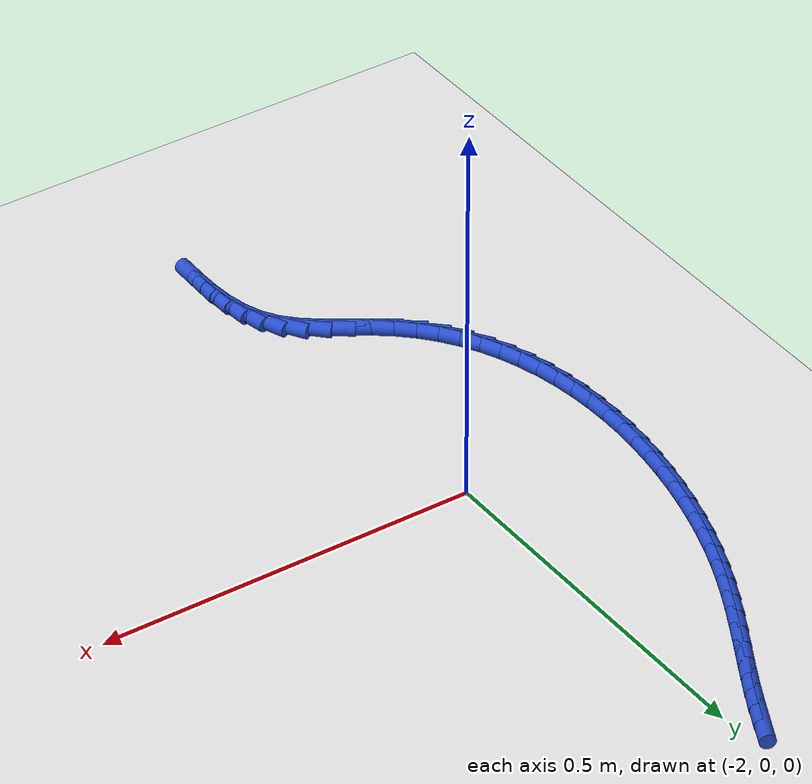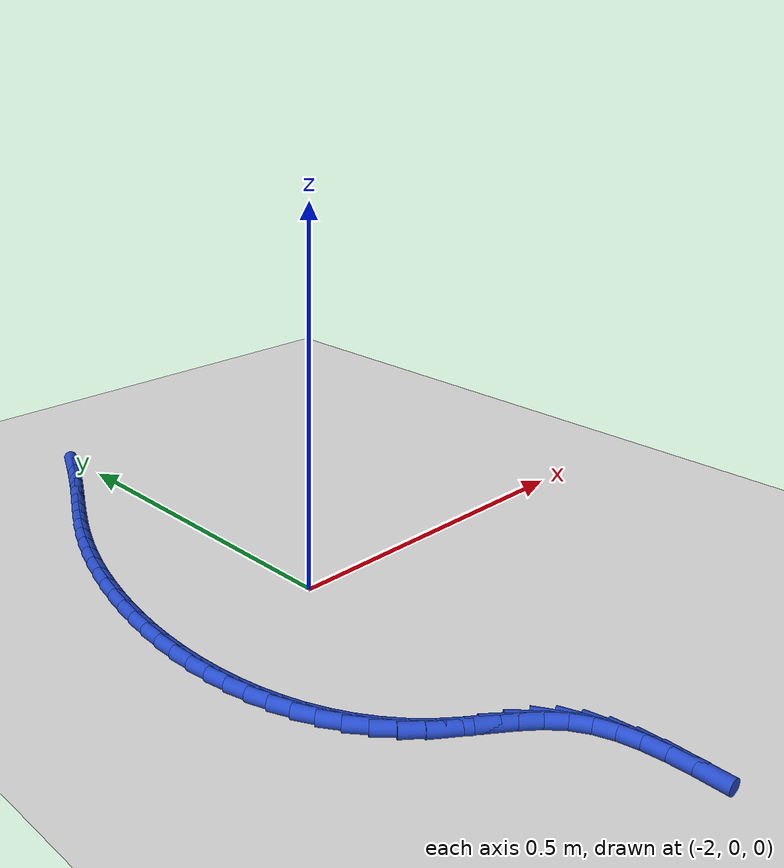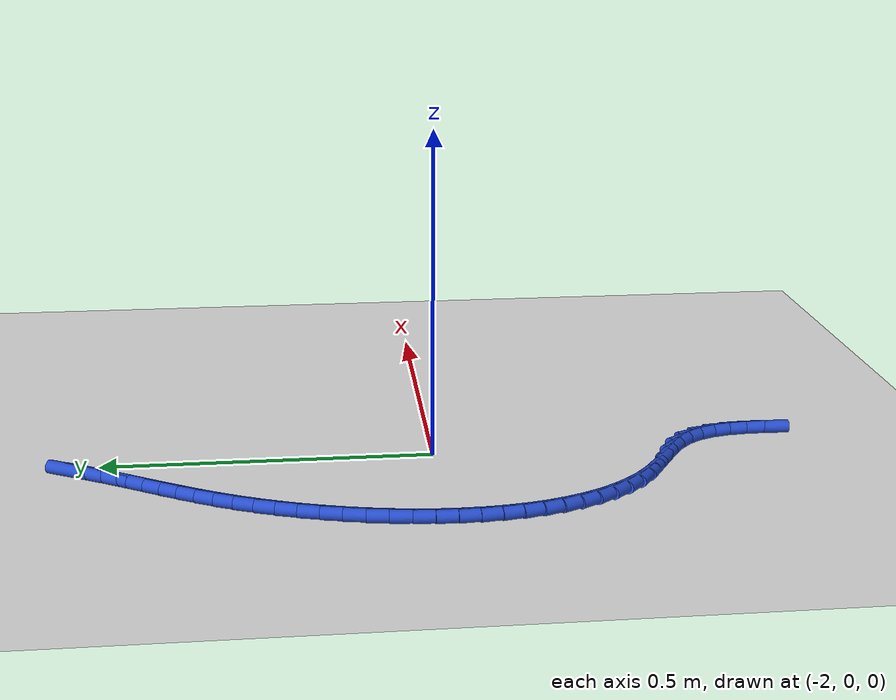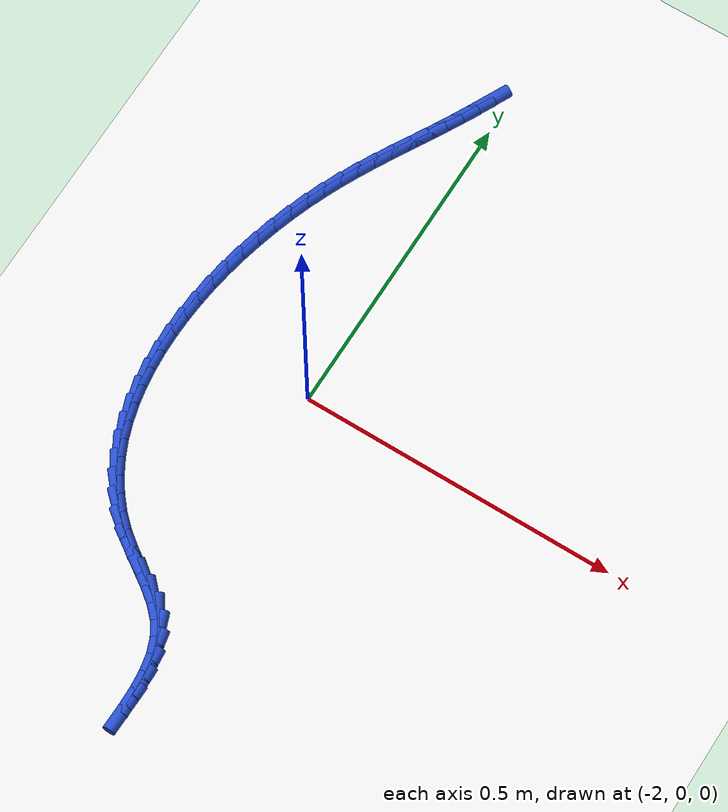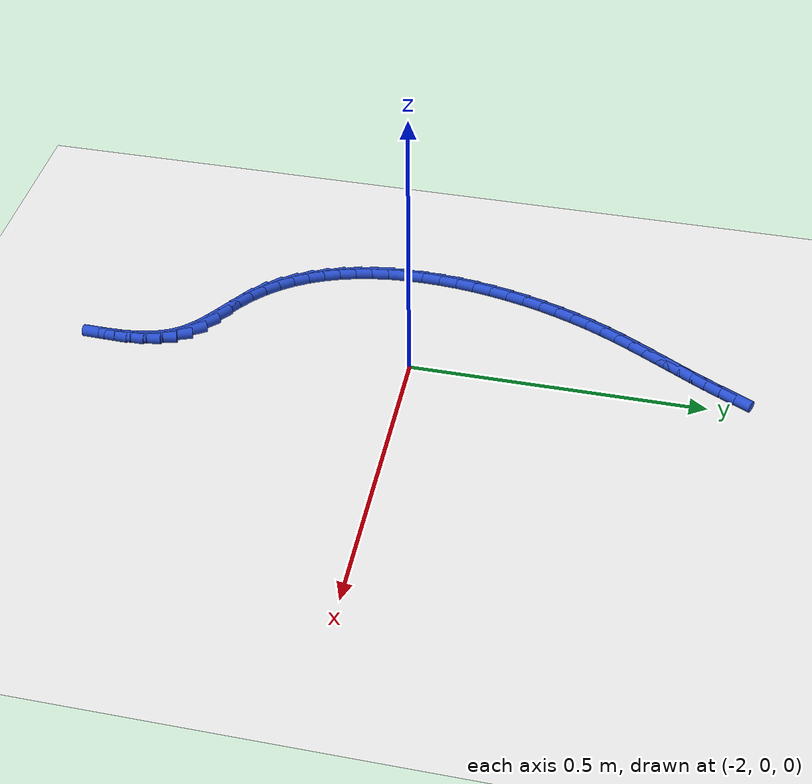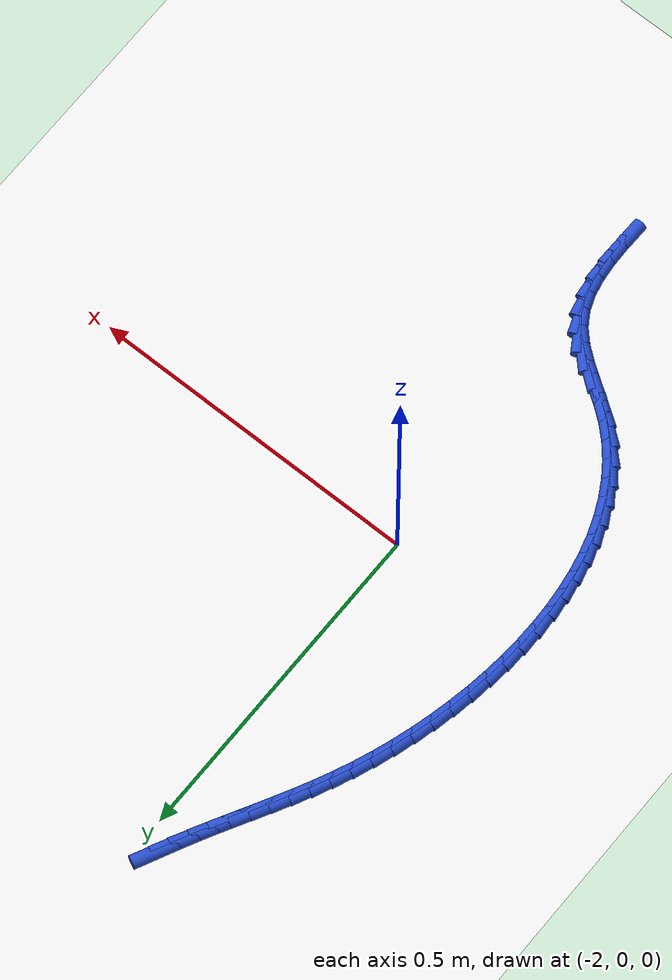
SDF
<sdf version="1.6">
 <world name="default">
  <model name="ground_plane">
   <static>1</static>
   <link name="link">
    <collision name="collision">
     <geometry><plane><normal>0 0 1</normal><size>100 100</size></plane></geometry>
     <surface><friction><ode><mu>100</mu><mu2>50</mu2></ode></friction></surface>
    </collision>
    <visual name="visual">
     <cast_shadows>0</cast_shadows>
     <geometry><plane><normal>0 0 1</normal><size>100 100</size></plane></geometry>
     <material>
      <script><uri>file://media/materials/scripts/gazebo.material</uri><name>Gazebo/WhiteGlow</name></script>
     </material>
    </visual>
   </link>
  </model>
  <model name="line">
   <link name="link_103">
    <pose>-2.0272003644635235 0.5338863656606025 0.01 0 1.57 1.1133587654145527</pose>
    <collision name="collision">
     <geometry><cylinder><radius>0.01</radius><length>0.08</length></cylinder></geometry>
    </collision>
    <visual name="visual">
     <material>
      <script><name>Gazebo/Blue</name><uri>file://media/materials/scripts/gazebo.material</uri></script>
     </material>
     <geometry><cylinder><radius>0.01</radius><length>0.08</length></cylinder></geometry>
    </visual>
   </link>
   <link name="link_104">
    <pose>-2.0395151716306663 0.5088695596973636 0.01 0 1.57 1.0975617156202602</pose>
    <collision name="collision">
     <geometry><cylinder><radius>0.01</radius><length>0.08</length></cylinder></geometry>
    </collision>
    <visual name="visual">
     <material>
      <script><name>Gazebo/Blue</name><uri>file://media/materials/scripts/gazebo.material</uri></script>
     </material>
     <geometry><cylinder><radius>0.01</radius><length>0.08</length></cylinder></geometry>
    </visual>
   </link>
   <link name="link_105">
    <pose>-2.0521713195485476 0.48415254084369885 0.01 0 1.57 1.0797283366177564</pose>
    <collision name="collision">
     <geometry><cylinder><radius>0.01</radius><length>0.08</length></cylinder></geometry>
    </collision>
    <visual name="visual">
     <material>
      <script><name>Gazebo/Blue</name><uri>file://media/materials/scripts/gazebo.material</uri></script>
     </material>
     <geometry><cylinder><radius>0.01</radius><length>0.08</length></cylinder></geometry>
    </visual>
   </link>
   <link name="link_106">
    <pose>-2.0652218124888133 0.4597481832683741 0.01 0 1.57 1.0680367067449057</pose>
    <collision name="collision">
     <geometry><cylinder><radius>0.01</radius><length>0.08</length></cylinder></geometry>
    </collision>
    <visual name="visual">
     <material>
      <script><name>Gazebo/Blue</name><uri>file://media/materials/scripts/gazebo.material</uri></script>
     </material>
     <geometry><cylinder><radius>0.01</radius><length>0.08</length></cylinder></geometry>
    </visual>
   </link>
   <link name="link_107">
    <pose>-2.078550659407238 0.43550911803804604 0.01 0 1.57 1.064188887965418</pose>
    <collision name="collision">
     <geometry><cylinder><radius>0.01</radius><length>0.08</length></cylinder></geometry>
    </collision>
    <visual name="visual">
     <material>
      <script><name>Gazebo/Blue</name><uri>file://media/materials/scripts/gazebo.material</uri></script>
     </material>
     <geometry><cylinder><radius>0.01</radius><length>0.08</length></cylinder></geometry>
    </visual>
   </link>
   <link name="link_108">
    <pose>-2.092008726966153 0.4112565503547838 0.01 0 1.57 1.0681579431897192</pose>
    <collision name="collision">
     <geometry><cylinder><radius>0.01</radius><length>0.08</length></cylinder></geometry>
    </collision>
    <visual name="visual">
     <material>
      <script><name>Gazebo/Blue</name><uri>file://media/materials/scripts/gazebo.material</uri></script>
     </material>
     <geometry><cylinder><radius>0.01</radius><length>0.08</length></cylinder></geometry>
    </visual>
   </link>
   <link name="link_109">
    <pose>-2.105446881827889 0.3868116854206559 0.01 0 1.57 1.0797750694802153</pose>
    <collision name="collision">
     <geometry><cylinder><radius>0.01</radius><length>0.08</length></cylinder></geometry>
    </collision>
    <visual name="visual">
     <material>
      <script><name>Gazebo/Blue</name><uri>file://media/materials/scripts/gazebo.material</uri></script>
     </material>
     <geometry><cylinder><radius>0.01</radius><length>0.08</length></cylinder></geometry>
    </visual>
   </link>
   <link name="link_110">
    <pose>-2.1187159906547772 0.36199572843773103 0.01 0 1.57 1.0987319402519897</pose>
    <collision name="collision">
     <geometry><cylinder><radius>0.01</radius><length>0.08</length></cylinder></geometry>
    </collision>
    <visual name="visual">
     <material>
      <script><name>Gazebo/Blue</name><uri>file://media/materials/scripts/gazebo.material</uri></script>
     </material>
     <geometry><cylinder><radius>0.01</radius><length>0.08</length></cylinder></geometry>
    </visual>
   </link>
   <link name="link_111">
    <pose>-2.131666920109149 0.33662988460807786 0.01 0 1.57 1.124577685523759</pose>
    <collision name="collision">
     <geometry><cylinder><radius>0.01</radius><length>0.08</length></cylinder></geometry>
    </collision>
    <visual name="visual">
     <material>
      <script><name>Gazebo/Blue</name><uri>file://media/materials/scripts/gazebo.material</uri></script>
     </material>
     <geometry><cylinder><radius>0.01</radius><length>0.08</length></cylinder></geometry>
    </visual>
   </link>
   <link name="link_112">
    <pose>-2.144150536853334 0.3105353591337649 0.01 0 1.57 1.156713603887688</pose>
    <collision name="collision">
     <geometry><cylinder><radius>0.01</radius><length>0.08</length></cylinder></geometry>
    </collision>
    <visual name="visual">
     <material>
      <script><name>Gazebo/Blue</name><uri>file://media/materials/scripts/gazebo.material</uri></script>
     </material>
     <geometry><cylinder><radius>0.01</radius><length>0.08</length></cylinder></geometry>
    </visual>
   </link>
   <link name="link_113">
    <pose>-2.1560177217156666 0.2835334216013646 0.01 0 1.57 1.193033380738731</pose>
    <collision name="collision">
     <geometry><cylinder><radius>0.01</radius><length>0.08</length></cylinder></geometry>
    </collision>
    <visual name="visual">
     <material>
      <script><name>Gazebo/Blue</name><uri>file://media/materials/scripts/gazebo.material</uri></script>
     </material>
     <geometry><cylinder><radius>0.01</radius><length>0.08</length></cylinder></geometry>
    </visual>
   </link>
   <link name="link_114">
    <pose>-2.1671351601185957 0.25551717349685066 0.01 0 1.57 1.2293370979055493</pose>
    <collision name="collision">
     <geometry><cylinder><radius>0.01</radius><length>0.08</length></cylinder></geometry>
    </collision>
    <visual name="visual">
     <material>
      <script><name>Gazebo/Blue</name><uri>file://media/materials/scripts/gazebo.material</uri></script>
     </material>
     <geometry><cylinder><radius>0.01</radius><length>0.08</length></cylinder></geometry>
    </visual>
   </link>
   <link name="link_115">
    <pose>-2.1774156062392893 0.2265890988522213 0.01 0 1.57 1.265353049163891</pose>
    <collision name="collision">
     <geometry><cylinder><radius>0.01</radius><length>0.08</length></cylinder></geometry>
    </collision>
    <visual name="visual">
     <material>
      <script><name>Gazebo/Blue</name><uri>file://media/materials/scripts/gazebo.material</uri></script>
     </material>
     <geometry><cylinder><radius>0.01</radius><length>0.08</length></cylinder></geometry>
    </visual>
   </link>
   <link name="link_116">
    <pose>-2.1867801625253263 0.19688962459861623 0.01 0 1.57 1.30154460880532</pose>
    <collision name="collision">
     <geometry><cylinder><radius>0.01</radius><length>0.08</length></cylinder></geometry>
    </collision>
    <visual name="visual">
     <material>
      <script><name>Gazebo/Blue</name><uri>file://media/materials/scripts/gazebo.material</uri></script>
     </material>
     <geometry><cylinder><radius>0.01</radius><length>0.08</length></cylinder></geometry>
    </visual>
   </link>
   <link name="link_117">
    <pose>-2.1951499314242873 0.16655917766717518 0.01 0 1.57 1.3383507503564016</pose>
    <collision name="collision">
     <geometry><cylinder><radius>0.01</radius><length>0.08</length></cylinder></geometry>
    </collision>
    <visual name="visual">
     <material>
      <script><name>Gazebo/Blue</name><uri>file://media/materials/scripts/gazebo.material</uri></script>
     </material>
     <geometry><cylinder><radius>0.01</radius><length>0.08</length></cylinder></geometry>
    </visual>
   </link>
   <link name="link_118">
    <pose>-2.202446015383752 0.13573818498903786 0.01 0 1.57 1.376200801546966</pose>
    <collision name="collision">
     <geometry><cylinder><radius>0.01</radius><length>0.08</length></cylinder></geometry>
    </collision>
    <visual name="visual">
     <material>
      <script><name>Gazebo/Blue</name><uri>file://media/materials/scripts/gazebo.material</uri></script>
     </material>
     <geometry><cylinder><radius>0.01</radius><length>0.08</length></cylinder></geometry>
    </visual>
   </link>
   <link name="link_119">
    <pose>-2.2085895168513003 0.10456707349534407 0.01 0 1.57 1.415526758832596</pose>
    <collision name="collision">
     <geometry><cylinder><radius>0.01</radius><length>0.08</length></cylinder></geometry>
    </collision>
    <visual name="visual">
     <material>
      <script><name>Gazebo/Blue</name><uri>file://media/materials/scripts/gazebo.material</uri></script>
     </material>
     <geometry><cylinder><radius>0.01</radius><length>0.08</length></cylinder></geometry>
    </visual>
   </link>
   <link name="link_120">
    <pose>-2.2135015382745116 0.07318627011723383 0.01 0 1.57 1.4567736255497687</pose>
    <collision name="collision">
     <geometry><cylinder><radius>0.01</radius><length>0.08</length></cylinder></geometry>
    </collision>
    <visual name="visual">
     <material>
      <script><name>Gazebo/Blue</name><uri>file://media/materials/scripts/gazebo.material</uri></script>
     </material>
     <geometry><cylinder><radius>0.01</radius><length>0.08</length></cylinder></geometry>
    </visual>
   </link>
   <link name="link_121">
    <pose>-2.2171031821009666 0.041736201785846055 0.01 0 1.57 1.5004078406773942</pose>
    <collision name="collision">
     <geometry><cylinder><radius>0.01</radius><length>0.08</length></cylinder></geometry>
    </collision>
    <visual name="visual">
     <material>
      <script><name>Gazebo/Blue</name><uri>file://media/materials/scripts/gazebo.material</uri></script>
     </material>
     <geometry><cylinder><radius>0.01</radius><length>0.08</length></cylinder></geometry>
    </visual>
   </link>
   <link name="link_122">
    <pose>-2.219315550778244 0.010357295432320985 0.01 0 1.57 1.5469234158436513</pose>
    <collision name="collision">
     <geometry><cylinder><radius>0.01</radius><length>0.08</length></cylinder></geometry>
    </collision>
    <visual name="visual">
     <material>
      <script><name>Gazebo/Blue</name><uri>file://media/materials/scripts/gazebo.material</uri></script>
     </material>
     <geometry><cylinder><radius>0.01</radius><length>0.08</length></cylinder></geometry>
    </visual>
   </link>
   <link name="link_123">
    <pose>-2.2200597467539254 -0.02081002201220181 0.01 0 1.57 -1.5447478171818014</pose>
    <collision name="collision">
     <geometry><cylinder><radius>0.01</radius><length>0.08</length></cylinder></geometry>
    </collision>
    <visual name="visual">
     <material>
      <script><name>Gazebo/Blue</name><uri>file://media/materials/scripts/gazebo.material</uri></script>
     </material>
     <geometry><cylinder><radius>0.01</radius><length>0.08</length></cylinder></geometry>
    </visual>
   </link>
   <link name="link_124">
    <pose>-2.219256872475588 -0.05162532361658251 0.01 0 1.57 -1.4908675973757055</pose>
    <collision name="collision">
     <geometry><cylinder><radius>0.01</radius><length>0.08</length></cylinder></geometry>
    </collision>
    <visual name="visual">
     <material>
      <script><name>Gazebo/Blue</name><uri>file://media/materials/scripts/gazebo.material</uri></script>
     </material>
     <geometry><cylinder><radius>0.01</radius><length>0.08</length></cylinder></geometry>
    </visual>
   </link>
   <link name="link_125">
    <pose>-2.216828030390814 -0.0819481824496814 0.01 0 1.57 -1.432456645876326</pose>
    <collision name="collision">
     <geometry><cylinder><radius>0.01</radius><length>0.08</length></cylinder></geometry>
    </collision>
    <visual name="visual">
     <material>
      <script><name>Gazebo/Blue</name><uri>file://media/materials/scripts/gazebo.material</uri></script>
     </material>
     <geometry><cylinder><radius>0.01</radius><length>0.08</length></cylinder></geometry>
    </visual>
   </link>
   <link name="link_126">
    <pose>-2.2126943229471823 -0.11163817158035877 0.01 0 1.57 -1.368944616238098</pose>
    <collision name="collision">
     <geometry><cylinder><radius>0.01</radius><length>0.08</length></cylinder></geometry>
    </collision>
    <visual name="visual">
     <material>
      <script><name>Gazebo/Blue</name><uri>file://media/materials/scripts/gazebo.material</uri></script>
     </material>
     <geometry><cylinder><radius>0.01</radius><length>0.08</length></cylinder></geometry>
    </visual>
   </link>
   <link name="link_127">
    <pose>-2.206776852592273 -0.14055486407747486 0.01 0 1.57 -1.299798809055535</pose>
    <collision name="collision">
     <geometry><cylinder><radius>0.01</radius><length>0.08</length></cylinder></geometry>
    </collision>
    <visual name="visual">
     <material>
      <script><name>Gazebo/Blue</name><uri>file://media/materials/scripts/gazebo.material</uri></script>
     </material>
     <geometry><cylinder><radius>0.01</radius><length>0.08</length></cylinder></geometry>
    </visual>
   </link>
   <link name="link_128">
    <pose>-2.1989967217736663 -0.16855783300989005 0.01 0 1.57 -1.2245801517299586</pose>
    <collision name="collision">
     <geometry><cylinder><radius>0.01</radius><length>0.08</length></cylinder></geometry>
    </collision>
    <visual name="visual">
     <material>
      <script><name>Gazebo/Blue</name><uri>file://media/materials/scripts/gazebo.material</uri></script>
     </material>
     <geometry><cylinder><radius>0.01</radius><length>0.08</length></cylinder></geometry>
    </visual>
   </link>
   <link name="link_129">
    <pose>-2.1892750329389408 -0.1955066514464645 0.01 0 1.57 -1.143021539058057</pose>
    <collision name="collision">
     <geometry><cylinder><radius>0.01</radius><length>0.08</length></cylinder></geometry>
    </collision>
    <visual name="visual">
     <material>
      <script><name>Gazebo/Blue</name><uri>file://media/materials/scripts/gazebo.material</uri></script>
     </material>
     <geometry><cylinder><radius>0.01</radius><length>0.08</length></cylinder></geometry>
    </visual>
   </link>
   <link name="link_130">
    <pose>-2.1775328885356786 -0.2212608924560586 0.01 0 1.57 -1.0551255042974084</pose>
    <collision name="collision">
     <geometry><cylinder><radius>0.01</radius><length>0.08</length></cylinder></geometry>
    </collision>
    <visual name="visual">
     <material>
      <script><name>Gazebo/Blue</name><uri>file://media/materials/scripts/gazebo.material</uri></script>
     </material>
     <geometry><cylinder><radius>0.01</radius><length>0.08</length></cylinder></geometry>
    </visual>
   </link>
   <link name="link_131">
    <pose>-2.163691391011457 -0.24568012910753245 0.01 0 1.57 -0.9612682071466391</pose>
    <collision name="collision">
     <geometry><cylinder><radius>0.01</radius><length>0.08</length></cylinder></geometry>
    </collision>
    <visual name="visual">
     <material>
      <script><name>Gazebo/Blue</name><uri>file://media/materials/scripts/gazebo.material</uri></script>
     </material>
     <geometry><cylinder><radius>0.01</radius><length>0.08</length></cylinder></geometry>
    </visual>
   </link>
   <link name="link_132">
    <pose>-2.1476716428138576 -0.26862393446974653 0.01 0 1.57 -0.862283617482684</pose>
    <collision name="collision">
     <geometry><cylinder><radius>0.01</radius><length>0.08</length></cylinder></geometry>
    </collision>
    <visual name="visual">
     <material>
      <script><name>Gazebo/Blue</name><uri>file://media/materials/scripts/gazebo.material</uri></script>
     </material>
     <geometry><cylinder><radius>0.01</radius><length>0.08</length></cylinder></geometry>
    </visual>
   </link>
   <link name="link_133">
    <pose>-2.1293947463904592 -0.28995188161156094 0.01 0 1.57 -0.7594915439570505</pose>
    <collision name="collision">
     <geometry><cylinder><radius>0.01</radius><length>0.08</length></cylinder></geometry>
    </collision>
    <visual name="visual">
     <material>
      <script><name>Gazebo/Blue</name><uri>file://media/materials/scripts/gazebo.material</uri></script>
     </material>
     <geometry><cylinder><radius>0.01</radius><length>0.08</length></cylinder></geometry>
    </visual>
   </link>
   <link name="link_134">
    <pose>-2.1087818041888426 -0.30952354360183615 0.01 0 1.57 -0.6588036240127543</pose>
    <collision name="collision">
     <geometry><cylinder><radius>0.01</radius><length>0.08</length></cylinder></geometry>
    </collision>
    <visual name="visual">
     <material>
      <script><name>Gazebo/Blue</name><uri>file://media/materials/scripts/gazebo.material</uri></script>
     </material>
     <geometry><cylinder><radius>0.01</radius><length>0.08</length></cylinder></geometry>
    </visual>
   </link>
   <link name="link_135">
    <pose>-2.085858381529518 -0.3272706210964098 0.01 0 1.57 -0.5999143930333918</pose>
    <collision name="collision">
     <geometry><cylinder><radius>0.01</radius><length>0.08</length></cylinder></geometry>
    </collision>
    <visual name="visual">
     <material>
      <script><name>Gazebo/Blue</name><uri>file://media/materials/scripts/gazebo.material</uri></script>
     </material>
     <geometry><cylinder><radius>0.01</radius><length>0.08</length></cylinder></geometry>
    </visual>
   </link>
   <link name="link_136">
    <pose>-2.0616603150546906 -0.34382236815532974 0.01 0 1.57 -0.6013125264228202</pose>
    <collision name="collision">
     <geometry><cylinder><radius>0.01</radius><length>0.08</length></cylinder></geometry>
    </collision>
    <visual name="visual">
     <material>
      <script><name>Gazebo/Blue</name><uri>file://media/materials/scripts/gazebo.material</uri></script>
     </material>
     <geometry><cylinder><radius>0.01</radius><length>0.08</length></cylinder></geometry>
    </visual>
   </link>
   <link name="link_137">
    <pose>-2.037789810664896 -0.3601990949794097 0.01 0 1.57 -0.6657463144540525</pose>
    <collision name="collision">
     <geometry><cylinder><radius>0.01</radius><length>0.08</length></cylinder></geometry>
    </collision>
    <visual name="visual">
     <material>
      <script><name>Gazebo/Blue</name><uri>file://media/materials/scripts/gazebo.material</uri></script>
     </material>
     <geometry><cylinder><radius>0.01</radius><length>0.08</length></cylinder></geometry>
    </visual>
   </link>
   <link name="link_138">
    <pose>-2.0158553243874895 -0.3774254272411053 0.01 0 1.57 -0.8043486906727131</pose>
    <collision name="collision">
     <geometry><cylinder><radius>0.01</radius><length>0.08</length></cylinder></geometry>
    </collision>
    <visual name="visual">
     <material>
      <script><name>Gazebo/Blue</name><uri>file://media/materials/scripts/gazebo.material</uri></script>
     </material>
     <geometry><cylinder><radius>0.01</radius><length>0.08</length></cylinder></geometry>
    </visual>
   </link>
   <link name="link_139">
    <pose>-1.9974653122498247 -0.39652599061287147 0.01 0 1.57 -1.0120741636804496</pose>
    <collision name="collision">
     <geometry><cylinder><radius>0.01</radius><length>0.08</length></cylinder></geometry>
    </collision>
    <visual name="visual">
     <material>
      <script><name>Gazebo/Blue</name><uri>file://media/materials/scripts/gazebo.material</uri></script>
     </material>
     <geometry><cylinder><radius>0.01</radius><length>0.08</length></cylinder></geometry>
    </visual>
   </link>
   <link name="link_140">
    <pose>-1.983853396401451 -0.4182991041311824 0.01 0 1.57 -1.2088642330261827</pose>
    <collision name="collision">
     <geometry><cylinder><radius>0.01</radius><length>0.08</length></cylinder></geometry>
    </collision>
    <visual name="visual">
     <material>
      <script><name>Gazebo/Blue</name><uri>file://media/materials/scripts/gazebo.material</uri></script>
     </material>
     <geometry><cylinder><radius>0.01</radius><length>0.08</length></cylinder></geometry>
    </visual>
   </link>
   <link name="link_141">
    <pose>-1.9746599583205156 -0.4425811648772039 0.01 0 1.57 -1.3630879258984934</pose>
    <collision name="collision">
     <geometry><cylinder><radius>0.01</radius><length>0.08</length></cylinder></geometry>
    </collision>
    <visual name="visual">
     <material>
      <script><name>Gazebo/Blue</name><uri>file://media/materials/scripts/gazebo.material</uri></script>
     </material>
     <geometry><cylinder><radius>0.01</radius><length>0.08</length></cylinder></geometry>
    </visual>
   </link>
   <link name="link_142">
    <pose>-1.969102141124151 -0.4689530390012803 0.01 0 1.57 -1.4746312965778434</pose>
    <collision name="collision">
     <geometry><cylinder><radius>0.01</radius><length>0.08</length></cylinder></geometry>
    </collision>
    <visual name="visual">
     <material>
      <script><name>Gazebo/Blue</name><uri>file://media/materials/scripts/gazebo.material</uri></script>
     </material>
     <geometry><cylinder><radius>0.01</radius><length>0.08</length></cylinder></geometry>
    </visual>
   </link>
   <link name="link_143">
    <pose>-1.966397084622679 -0.4969955906572621 0.01 0 1.57 -1.5491176735053647</pose>
    <collision name="collision">
     <geometry><cylinder><radius>0.01</radius><length>0.08</length></cylinder></geometry>
    </collision>
    <visual name="visual">
     <material>
      <script><name>Gazebo/Blue</name><uri>file://media/materials/scripts/gazebo.material</uri></script>
     </material>
     <geometry><cylinder><radius>0.01</radius><length>0.08</length></cylinder></geometry>
    </visual>
   </link>
   <link name="link_144">
    <pose>-1.965761928626422 -0.5262896839990003 0.01 0 1.57 1.5491614662812965</pose>
    <collision name="collision">
     <geometry><cylinder><radius>0.01</radius><length>0.08</length></cylinder></geometry>
    </collision>
    <visual name="visual">
     <material>
      <script><name>Gazebo/Blue</name><uri>file://media/materials/scripts/gazebo.material</uri></script>
     </material>
     <geometry><cylinder><radius>0.01</radius><length>0.08</length></cylinder></geometry>
    </visual>
   </link>
  </model>
 </world>
</sdf>
